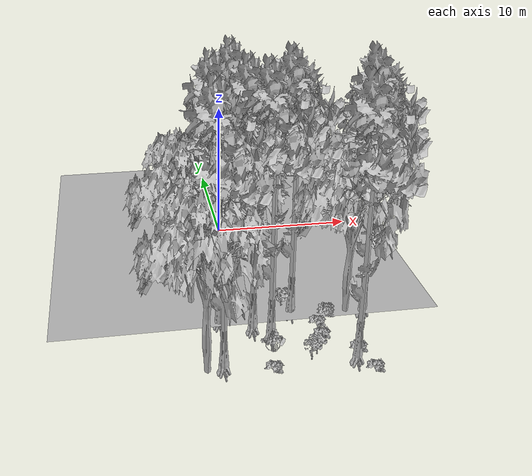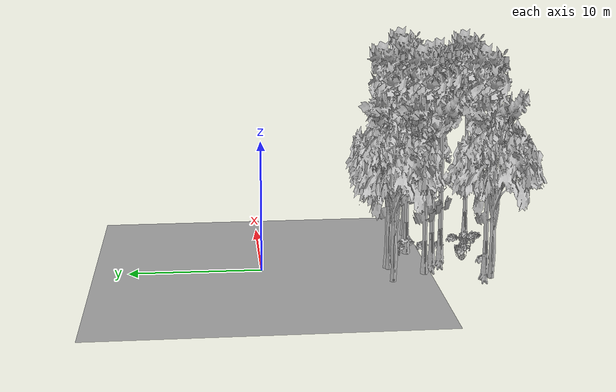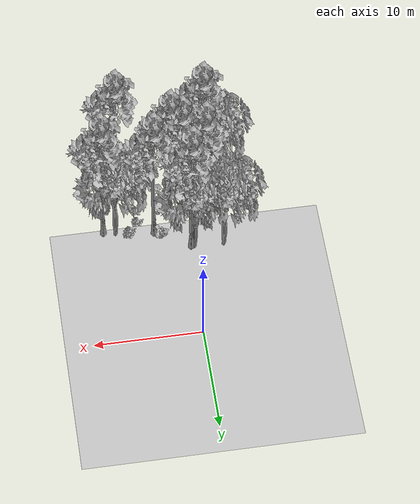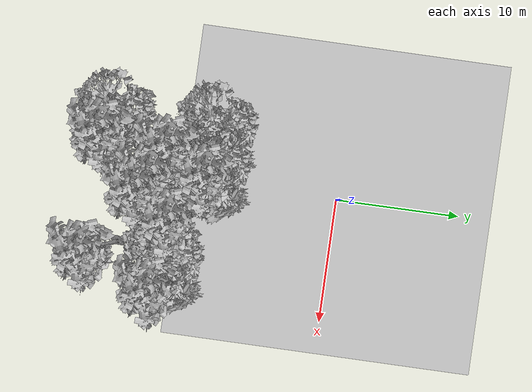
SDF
<sdf version="1.7">
 <world name="default">
  <model name="ground_plane">
   <static>1</static>
   <link name="link">
    <collision name="collision">
     <pose>-50 0 0 0 -0 0</pose>
     <geometry><plane><normal>0 0 1</normal><size>80 80</size></plane></geometry>
     <surface><contact><ode><min_depth>0.01</min_depth><max_vel>0</max_vel></ode></contact></surface>
    </collision>
    <visual name="grass">
     <cast_shadows>0</cast_shadows>
     <geometry>
      <mesh>
       <scale>0.46714285714285714 0.46714285714285714 0.1</scale>
       <uri>file://grass_plane/meshes/grass_plane.dae</uri>
      </mesh>
     </geometry>
    </visual>
   </link>
  </model>
  <model name="Tree 0">
   <static>1</static>
   <pose>1.1159811965153565 -13.89830316631869 0 1.57079 -0 0</pose>
   <link name="link">
    <collision name="collision">
     <geometry><mesh><scale>3.5 5 3.5</scale><uri>model://tree_9/meshes/tree_9.obj</uri></mesh></geometry>
    </collision>
    <visual name="visual">
     <geometry><mesh><scale>3.5 5 3.5</scale><uri>model://tree_9/meshes/tree_9.obj</uri></mesh></geometry>
    </visual>
   </link>
  </model>
  <model name="Tree 26">
   <static>1</static>
   <pose>0.13318210508983697 -13.030593485971256 0 1.57079 -0 0</pose>
   <link name="link">
    <collision name="collision">
     <geometry><mesh><scale>3.5 5 3.5</scale><uri>model://tree_9/meshes/tree_9.obj</uri></mesh></geometry>
    </collision>
    <visual name="visual">
     <geometry><mesh><scale>3.5 5 3.5</scale><uri>model://tree_9/meshes/tree_9.obj</uri></mesh></geometry>
    </visual>
   </link>
  </model>
  <model name="Tree 40">
   <static>1</static>
   <pose>-3.3557278795785948 -16.876541399602438 0 1.57079 -0 0</pose>
   <link name="link">
    <collision name="collision">
     <geometry><mesh><scale>3.5 5 3.5</scale><uri>model://tree_2/meshes/tree_2.obj</uri></mesh></geometry>
    </collision>
    <visual name="visual">
     <geometry><mesh><scale>3.5 5 3.5</scale><uri>model://tree_2/meshes/tree_2.obj</uri></mesh></geometry>
    </visual>
   </link>
  </model>
  <model name="Tree 80">
   <static>1</static>
   <pose>-0.3027323700927411 -9.51702258454003 0 1.57079 -0 0</pose>
   <link name="link">
    <collision name="collision">
     <geometry><mesh><scale>3.5 5 3.5</scale><uri>model://tree_9/meshes/tree_9.obj</uri></mesh></geometry>
    </collision>
    <visual name="visual">
     <geometry><mesh><scale>3.5 5 3.5</scale><uri>model://tree_9/meshes/tree_9.obj</uri></mesh></geometry>
    </visual>
   </link>
  </model>
  <model name="Tree 90">
   <static>1</static>
   <pose>-1.8441734093630728 -12.099182380706914 0 1.57079 -0 0</pose>
   <link name="link">
    <collision name="collision">
     <geometry><mesh><scale>3.5 5 3.5</scale><uri>model://tree_9/meshes/tree_9.obj</uri></mesh></geometry>
    </collision>
    <visual name="visual">
     <geometry><mesh><scale>3.5 5 3.5</scale><uri>model://tree_9/meshes/tree_9.obj</uri></mesh></geometry>
    </visual>
   </link>
  </model>
  <model name="Tree 163">
   <static>1</static>
   <pose>-0.7123458711237518 -9.61059353426828 0 1.57079 -0 0</pose>
   <link name="link">
    <collision name="collision">
     <geometry><mesh><scale>3.5 5 3.5</scale><uri>model://tree_2/meshes/tree_2.obj</uri></mesh></geometry>
    </collision>
    <visual name="visual">
     <geometry><mesh><scale>3.5 5 3.5</scale><uri>model://tree_2/meshes/tree_2.obj</uri></mesh></geometry>
    </visual>
   </link>
  </model>
  <model name="Tree 232">
   <static>1</static>
   <pose>-3.4479782175500375 -9.527189210248778 0 1.57079 -0 0</pose>
   <link name="link">
    <collision name="collision">
     <geometry><mesh><scale>3.5 5 3.5</scale><uri>model://tree_2/meshes/tree_2.obj</uri></mesh></geometry>
    </collision>
    <visual name="visual">
     <geometry><mesh><scale>3.5 5 3.5</scale><uri>model://tree_2/meshes/tree_2.obj</uri></mesh></geometry>
    </visual>
   </link>
  </model>
  <model name="Tree 266">
   <static>1</static>
   <pose>7.599613255239383 -12.161329258822704 0 1.57079 -0 0</pose>
   <link name="link">
    <collision name="collision">
     <geometry><mesh><scale>3.5 5 3.5</scale><uri>model://tree_9/meshes/tree_9.obj</uri></mesh></geometry>
    </collision>
    <visual name="visual">
     <geometry><mesh><scale>3.5 5 3.5</scale><uri>model://tree_9/meshes/tree_9.obj</uri></mesh></geometry>
    </visual>
   </link>
  </model>
  <model name="Tree 281">
   <static>1</static>
   <pose>6.378833888298338 -12.06529684537605 0 1.57079 -0 0</pose>
   <link name="link">
    <collision name="collision">
     <geometry><mesh><scale>3.5 5 3.5</scale><uri>model://tree_2/meshes/tree_2.obj</uri></mesh></geometry>
    </collision>
    <visual name="visual">
     <geometry><mesh><scale>3.5 5 3.5</scale><uri>model://tree_2/meshes/tree_2.obj</uri></mesh></geometry>
    </visual>
   </link>
  </model>
  <model name="Tree 352">
   <static>1</static>
   <pose>-2.2725095631032843 -16.631133423752793 0 1.57079 -0 0</pose>
   <link name="link">
    <collision name="collision">
     <geometry><mesh><scale>3.5 5 3.5</scale><uri>model://tree_9/meshes/tree_9.obj</uri></mesh></geometry>
    </collision>
    <visual name="visual">
     <geometry><mesh><scale>3.5 5 3.5</scale><uri>model://tree_9/meshes/tree_9.obj</uri></mesh></geometry>
    </visual>
   </link>
  </model>
  <model name="Tree 389">
   <static>1</static>
   <pose>2.924438592806837 -11.545100798335781 0 1.57079 -0 0</pose>
   <link name="link">
    <collision name="collision">
     <geometry><mesh><scale>3.5 5 3.5</scale><uri>model://tree_9/meshes/tree_9.obj</uri></mesh></geometry>
    </collision>
    <visual name="visual">
     <geometry><mesh><scale>3.5 5 3.5</scale><uri>model://tree_9/meshes/tree_9.obj</uri></mesh></geometry>
    </visual>
   </link>
  </model>
  <model name="Tree 428">
   <static>1</static>
   <pose>5.7307576556046484 -16.883232789252915 0 1.57079 -0 0</pose>
   <link name="link">
    <collision name="collision">
     <geometry><mesh><scale>3.5 5 3.5</scale><uri>model://tree_9/meshes/tree_9.obj</uri></mesh></geometry>
    </collision>
    <visual name="visual">
     <geometry><mesh><scale>3.5 5 3.5</scale><uri>model://tree_9/meshes/tree_9.obj</uri></mesh></geometry>
    </visual>
   </link>
  </model>
  <model name="Bush 6">
   <static>1</static>
   <pose>4.257859464701902 -14.37456478656685 0 1.57079 -0 0</pose>
   <link name="link">
    <collision name="collision">
     <geometry><mesh><scale>2 2 2</scale><uri>model://bush_2/meshes/bush_2.obj</uri></mesh></geometry>
     <surface><contact><collide_without_contact>false</collide_without_contact></contact></surface>
    </collision>
    <visual name="visual">
     <geometry><mesh><scale>2 2 2</scale><uri>model://bush_2/meshes/bush_2.obj</uri></mesh></geometry>
    </visual>
   </link>
  </model>
  <model name="Bush 181">
   <static>1</static>
   <pose>2.424726686398891 -10.920660021120039 0 1.57079 -0 0</pose>
   <link name="link">
    <collision name="collision">
     <geometry><mesh><scale>2 2 2</scale><uri>model://bush_0/meshes/bush_0.obj</uri></mesh></geometry>
     <surface><contact><collide_without_contact>false</collide_without_contact></contact></surface>
    </collision>
    <visual name="visual">
     <geometry><mesh><scale>2 2 2</scale><uri>model://bush_0/meshes/bush_0.obj</uri></mesh></geometry>
    </visual>
   </link>
  </model>
  <model name="Bush 182">
   <static>1</static>
   <pose>3.0055539447924318 -16.70135366851153 0 1.57079 -0 0</pose>
   <link name="link">
    <collision name="collision">
     <geometry><mesh><scale>2 2 2</scale><uri>model://bush_5/meshes/bush_5.obj</uri></mesh></geometry>
     <surface><contact><collide_without_contact>false</collide_without_contact></contact></surface>
    </collision>
    <visual name="visual">
     <geometry><mesh><scale>2 2 2</scale><uri>model://bush_5/meshes/bush_5.obj</uri></mesh></geometry>
    </visual>
   </link>
  </model>
  <model name="Bush 195">
   <static>1</static>
   <pose>5.26746729003159 -11.777380712200653 0 1.57079 -0 0</pose>
   <link name="link">
    <collision name="collision">
     <geometry><mesh><scale>2 2 2</scale><uri>model://bush_2/meshes/bush_2.obj</uri></mesh></geometry>
     <surface><contact><collide_without_contact>false</collide_without_contact></contact></surface>
    </collision>
    <visual name="visual">
     <geometry><mesh><scale>2 2 2</scale><uri>model://bush_2/meshes/bush_2.obj</uri></mesh></geometry>
    </visual>
   </link>
  </model>
  <model name="Bush 199">
   <static>1</static>
   <pose>4.305912745951993 -13.097688067077069 0 1.57079 -0 0</pose>
   <link name="link">
    <collision name="collision">
     <geometry><mesh><scale>2 2 2</scale><uri>model://bush_2/meshes/bush_2.obj</uri></mesh></geometry>
     <surface><contact><collide_without_contact>false</collide_without_contact></contact></surface>
    </collision>
    <visual name="visual">
     <geometry><mesh><scale>2 2 2</scale><uri>model://bush_2/meshes/bush_2.obj</uri></mesh></geometry>
    </visual>
   </link>
  </model>
  <model name="Bush 204">
   <static>1</static>
   <pose>3.4331524511664355 -16.23937697177113 0 1.57079 -0 0</pose>
   <link name="link">
    <collision name="collision">
     <geometry><mesh><scale>2 2 2</scale><uri>model://bush_5/meshes/bush_5.obj</uri></mesh></geometry>
     <surface><contact><collide_without_contact>false</collide_without_contact></contact></surface>
    </collision>
    <visual name="visual">
     <geometry><mesh><scale>2 2 2</scale><uri>model://bush_5/meshes/bush_5.obj</uri></mesh></geometry>
    </visual>
   </link>
  </model>
  <model name="Bush 277">
   <static>1</static>
   <pose>6.495317489793742 -17.971482856141485 0 1.57079 -0 0</pose>
   <link name="link">
    <collision name="collision">
     <geometry><mesh><scale>2 2 2</scale><uri>model://bush_2/meshes/bush_2.obj</uri></mesh></geometry>
     <surface><contact><collide_without_contact>false</collide_without_contact></contact></surface>
    </collision>
    <visual name="visual">
     <geometry><mesh><scale>2 2 2</scale><uri>model://bush_2/meshes/bush_2.obj</uri></mesh></geometry>
    </visual>
   </link>
  </model>
  <model name="Bush 507">
   <static>1</static>
   <pose>0.9192005848890048 -15.606163797537356 0 1.57079 -0 0</pose>
   <link name="link">
    <collision name="collision">
     <geometry><mesh><scale>2 2 2</scale><uri>model://bush_4/meshes/bush_4.obj</uri></mesh></geometry>
     <surface><contact><collide_without_contact>false</collide_without_contact></contact></surface>
    </collision>
    <visual name="visual">
     <geometry><mesh><scale>2 2 2</scale><uri>model://bush_4/meshes/bush_4.obj</uri></mesh></geometry>
    </visual>
   </link>
  </model>
  <model name="Bush 526">
   <static>1</static>
   <pose>0.6201410899827806 -17.186988068215214 0 1.57079 -0 0</pose>
   <link name="link">
    <collision name="collision">
     <geometry><mesh><scale>2 2 2</scale><uri>model://bush_2/meshes/bush_2.obj</uri></mesh></geometry>
     <surface><contact><collide_without_contact>false</collide_without_contact></contact></surface>
    </collision>
    <visual name="visual">
     <geometry><mesh><scale>2 2 2</scale><uri>model://bush_2/meshes/bush_2.obj</uri></mesh></geometry>
    </visual>
   </link>
  </model>
  <model name="Bush 558">
   <static>1</static>
   <pose>5.150240695744948 -12.149911088561531 0 1.57079 -0 0</pose>
   <link name="link">
    <collision name="collision">
     <geometry><mesh><scale>2 2 2</scale><uri>model://bush_2/meshes/bush_2.obj</uri></mesh></geometry>
     <surface><contact><collide_without_contact>false</collide_without_contact></contact></surface>
    </collision>
    <visual name="visual">
     <geometry><mesh><scale>2 2 2</scale><uri>model://bush_2/meshes/bush_2.obj</uri></mesh></geometry>
    </visual>
   </link>
  </model>
  <model name="Bush 563">
   <static>1</static>
   <pose>6.098481564065054 -16.017769731437106 0 1.57079 -0 0</pose>
   <link name="link">
    <collision name="collision">
     <geometry><mesh><scale>2 2 2</scale><uri>model://bush_2/meshes/bush_2.obj</uri></mesh></geometry>
     <surface><contact><collide_without_contact>false</collide_without_contact></contact></surface>
    </collision>
    <visual name="visual">
     <geometry><mesh><scale>2 2 2</scale><uri>model://bush_2/meshes/bush_2.obj</uri></mesh></geometry>
    </visual>
   </link>
  </model>
 </world>
</sdf>
